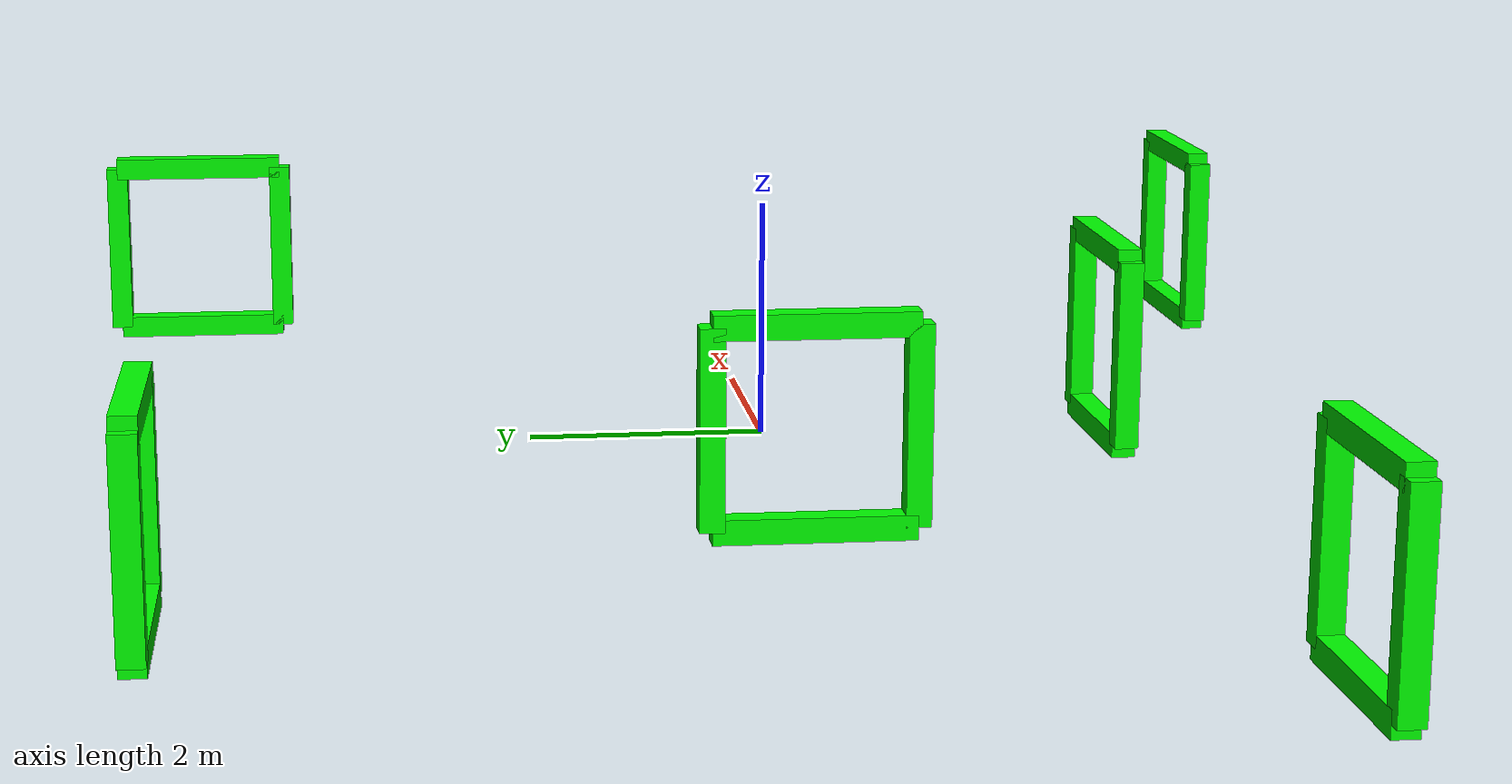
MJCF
<mujoco model="simple_shapes">
  <worldbody>
    <body name="gate1" pos="-3 0 0" euler="0 0 270">
      <geom type="box" size="0.8 0.1 0.1" pos="0 0 0" rgba="0 1 0 1"/>
      <geom type="box" size="0.1 0.1 0.8" pos="-0.8 0 0.8" rgba="0 1 0 1"/>
      <geom type="box" size="0.8 0.1 0.1" pos="0 0 1.6" rgba="0 1 0 1"/>
      <geom type="box" size="0.1 0.1 0.8" pos="0.8 0 0.8" rgba="0 1 0 1"/>
    </body>

    <body name="gate2" pos="-7 -3 0" euler="0 0 180">
      <geom type="box" size="0.8 0.1 0.1" pos="0 0 0" rgba="0 1 0 1"/>
      <geom type="box" size="0.1 0.1 0.8" pos="-0.8 0 0.8" rgba="0 1 0 1"/>
      <geom type="box" size="0.8 0.1 0.1" pos="0 0 1.6" rgba="0 1 0 1"/>
      <geom type="box" size="0.1 0.1 0.8" pos="0.8 0 0.8" rgba="0 1 0 1"/>
    </body>

    <body name="gate3" pos="0 -3 0">
      <geom type="box" size="0.8 0.1 0.1" pos="0 0 0" rgba="0 1 0 1"/>
      <geom type="box" size="0.1 0.1 0.8" pos="-0.8 0 0.8" rgba="0 1 0 1"/>
      <geom type="box" size="0.8 0.1 0.1" pos="0 0 1.6" rgba="0 1 0 1"/>
      <geom type="box" size="0.1 0.1 0.8" pos="0.8 0 0.8" rgba="0 1 0 1"/>
    </body>

    <body name="gate4" pos="5 5 0" euler="0 0 90">
      <geom type="box" size="0.8 0.1 0.1" pos="0 0 0" rgba="0 1 0 1"/>
      <geom type="box" size="0.1 0.1 0.8" pos="-0.8 0 0.8" rgba="0 1 0 1"/>
      <geom type="box" size="0.8 0.1 0.1" pos="0 0 1.6" rgba="0 1 0 1"/>
      <geom type="box" size="0.1 0.1 0.8" pos="0.8 0 0.8" rgba="0 1 0 1"/>
    </body>

    <body name="gate5" pos="5 -5 0" euler="0 0 180">
      <geom type="box" size="0.8 0.1 0.1" pos="0 0 0" rgba="0 1 0 1"/>
      <geom type="box" size="0.1 0.1 0.8" pos="-0.8 0 0.8" rgba="0 1 0 1"/>
      <geom type="box" size="0.8 0.1 0.1" pos="0 0 1.6" rgba="0 1 0 1"/>
      <geom type="box" size="0.1 0.1 0.8" pos="0.8 0 0.8" rgba="0 1 0 1"/>
    </body>

    <body name="gate6" pos="-5 5 0" >
      <geom type="box" size="0.8 0.1 0.1" pos="0 0 0" rgba="0 1 0 1"/>
      <geom type="box" size="0.1 0.1 0.8" pos="-0.8 0 0.8" rgba="0 1 0 1"/>
      <geom type="box" size="0.8 0.1 0.1" pos="0 0 1.6" rgba="0 1 0 1"/>
      <geom type="box" size="0.1 0.1 0.8" pos="0.8 0 0.8" rgba="0 1 0 1"/>
    </body>

  </worldbody>
</mujoco>
